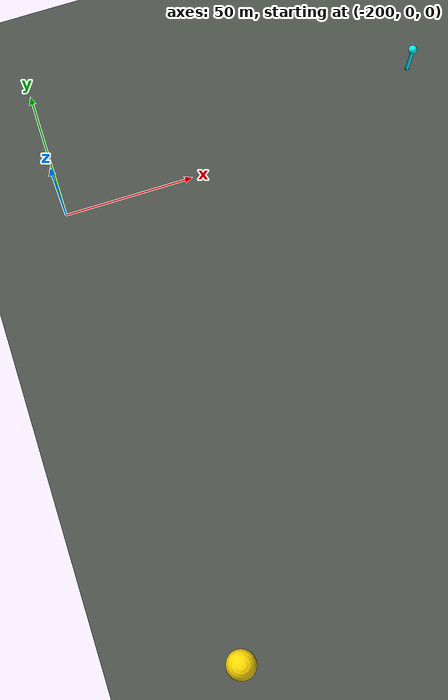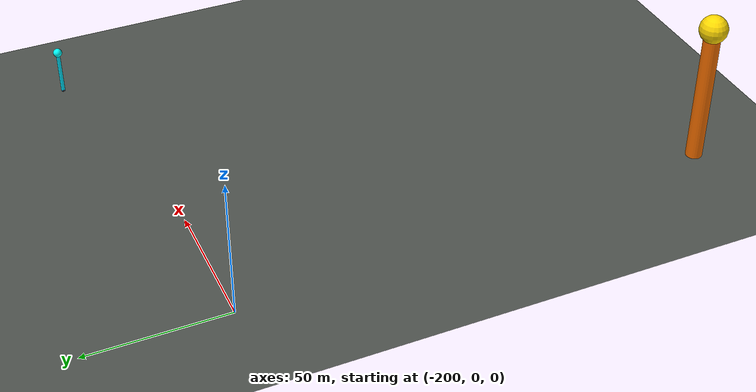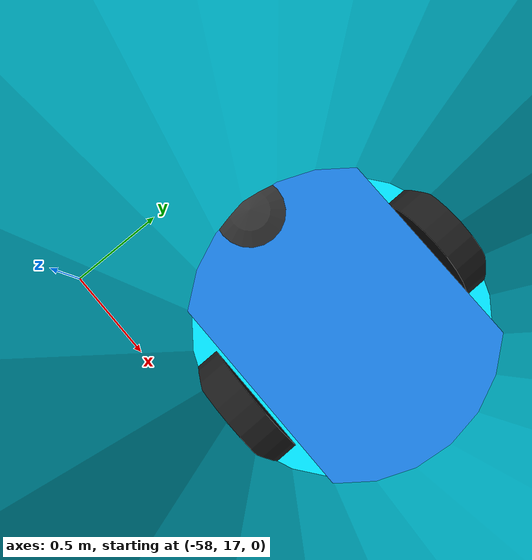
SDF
<?xml version="1.0"?>
<sdf version="1.10">
  <world name="rfsim">
    <physics name="1ms" type="ignored"><max_step_size>0.004</max_step_size><real_time_factor>1.0</real_time_factor></physics>
    <plugin filename="gz-sim-physics-system" name="gz::sim::systems::Physics"/>
    <plugin filename="gz-sim-user-commands-system" name="gz::sim::systems::UserCommands"/>
    <plugin filename="gz-sim-scene-broadcaster-system" name="gz::sim::systems::SceneBroadcaster"/>
    <scene><ambient>0.6 0.6 0.6 1</ambient><background>0.7 0.8 0.9 1</background></scene>
    <light type="directional" name="sun">
      <cast_shadows>false</cast_shadows><direction>-0.4 0.3 -0.9</direction>
      <diffuse>0.9 0.9 0.9 1</diffuse><specular>0.2 0.2 0.2 1</specular>
    </light>
    <model name="ground"><static>true</static><link name="l">
      <collision name="c"><geometry><plane><normal>0 0 1</normal><size>700 700</size></plane></geometry></collision>
      <visual name="v"><geometry><plane><normal>0 0 1</normal><size>700 700</size></plane></geometry>
        <material><ambient>0.25 0.27 0.25 1</ambient><diffuse>0.3 0.32 0.3 1</diffuse></material></visual>
    </link></model>
    <model name="emitter">
      <static>true</static>
      <pose>-187.85 -177.65 0 0 0 0</pose>
      <link name="l">
        <visual name="pillar"><pose>0 0 25 0 0 0</pose>
          <geometry><cylinder><radius>3</radius><length>50</length></cylinder></geometry>
          <material><ambient>1 0.35 0 1</ambient><diffuse>1 0.45 0 1</diffuse><emissive>1 0.4 0 1</emissive></material>
        </visual>
        <visual name="ball"><pose>0 0 52 0 0 0</pose>
          <geometry><sphere><radius>5</radius></sphere></geometry>
          <material><ambient>1 0.85 0 1</ambient><diffuse>1 0.85 0 1</diffuse><emissive>1 0.75 0 1</emissive></material>
        </visual>
      </link>
    </model>

    <model name="rover">
      <pose>-56.95 17.85 0 0 0 0</pose>
      <link name="chassis">
        <pose>0 0 0.40 0 0 0</pose>
        <inertial><mass>10.0</mass>
          <inertia><ixx>0.9</ixx><iyy>2.2</iyy><izz>3.0</izz><ixy>0</ixy><ixz>0</ixz><iyz>0</iyz></inertia>
        </inertial>
        <collision name="c"><geometry><box><size>1.6 1.0 0.3</size></box></geometry></collision>
        <visual name="v"><geometry><box><size>1.6 1.0 0.3</size></box></geometry>
          <material><ambient>0.1 0.4 0.8 1</ambient><diffuse>0.1 0.5 0.9 1</diffuse></material>
        </visual>
        <visual name="beacon"><pose>0 0 8 0 0 0</pose>
          <geometry><cylinder><radius>0.7</radius><length>16</length></cylinder></geometry>
          <material><ambient>0 0.8 1 1</ambient><diffuse>0 0.9 1 1</diffuse><emissive>0 0.7 1 1</emissive></material>
        </visual>
        <visual name="beacontop"><pose>0 0 16.5 0 0 0</pose>
          <geometry><sphere><radius>1.6</radius></sphere></geometry>
          <material><ambient>0 1 1 1</ambient><diffuse>0 1 1 1</diffuse><emissive>0 0.9 1 1</emissive></material>
        </visual>
      </link>
      <link name="lw">
        <pose>0 0.6 0.30 -1.5708 0 0</pose>
        <inertial><mass>1.0</mass><inertia><ixx>0.03</ixx><iyy>0.03</iyy><izz>0.045</izz><ixy>0</ixy><ixz>0</ixz><iyz>0</iyz></inertia></inertial>
        <collision name="c"><surface><friction><ode><mu>1.5</mu><mu2>1.5</mu2></ode></friction></surface>
          <geometry><cylinder><radius>0.30</radius><length>0.15</length></cylinder></geometry></collision>
        <visual name="v"><geometry><cylinder><radius>0.30</radius><length>0.15</length></cylinder></geometry>
          <material><ambient>0.1 0.1 0.1 1</ambient></material></visual>
      </link>
      <link name="rw">
        <pose>0 -0.6 0.30 -1.5708 0 0</pose>
        <inertial><mass>1.0</mass><inertia><ixx>0.03</ixx><iyy>0.03</iyy><izz>0.045</izz><ixy>0</ixy><ixz>0</ixz><iyz>0</iyz></inertia></inertial>
        <collision name="c"><surface><friction><ode><mu>1.5</mu><mu2>1.5</mu2></ode></friction></surface>
          <geometry><cylinder><radius>0.30</radius><length>0.15</length></cylinder></geometry></collision>
        <visual name="v"><geometry><cylinder><radius>0.30</radius><length>0.15</length></cylinder></geometry>
          <material><ambient>0.1 0.1 0.1 1</ambient></material></visual>
      </link>
      <link name="caster">
        <pose>-0.65 0 0.30 0 0 0</pose>
        <inertial><mass>0.3</mass><inertia><ixx>0.005</ixx><iyy>0.005</iyy><izz>0.005</izz><ixy>0</ixy><ixz>0</ixz><iyz>0</iyz></inertia></inertial>
        <collision name="c"><surface><friction><ode><mu>0.0</mu><mu2>0.0</mu2></ode></friction></surface>
          <geometry><sphere><radius>0.30</radius></sphere></geometry></collision>
        <visual name="v"><geometry><sphere><radius>0.30</radius></sphere></geometry>
          <material><ambient>0.2 0.2 0.2 1</ambient></material></visual>
      </link>
      <joint name="lwj" type="revolute"><parent>chassis</parent><child>lw</child>
        <axis><xyz>0 1 0</xyz><limit><lower>-1e16</lower><upper>1e16</upper></limit></axis></joint>
      <joint name="rwj" type="revolute"><parent>chassis</parent><child>rw</child>
        <axis><xyz>0 1 0</xyz><limit><lower>-1e16</lower><upper>1e16</upper></limit></axis></joint>
      <joint name="cj" type="ball"><parent>chassis</parent><child>caster</child></joint>

      <plugin filename="gz-sim-diff-drive-system" name="gz::sim::systems::DiffDrive">
        <left_joint>lwj</left_joint>
        <right_joint>rwj</right_joint>
        <wheel_separation>1.2</wheel_separation>
        <wheel_radius>0.30</wheel_radius>
        <topic>/model/rover/cmd_vel</topic>
        <odom_topic>/model/rover/odometry</odom_topic>
        <tf_topic>/model/rover/tf</tf_topic>
        <frame_id>odom</frame_id>
        <child_frame_id>rover</child_frame_id>
        <odom_publish_frequency>30</odom_publish_frequency>
        <max_linear_acceleration>3.0</max_linear_acceleration>
      </plugin>
    </model>
    <gui fullscreen="0">
      <plugin filename="MinimalScene" name="3D View">
        <gz-gui>
          <title>RF Seeker — live</title>
          <property type="bool" key="showTitleBar">false</property>
          <property type="string" key="state">docked</property>
        </gz-gui>
        <engine>ogre2</engine>
        <scene>scene</scene>
        <ambient_light>0.6 0.6 0.6</ambient_light>
        <background_color>0.7 0.8 0.9</background_color>
        <camera_pose>0 -210 320 0 0.95 1.5708</camera_pose>
      </plugin>
      <plugin filename="GzSceneManager" name="Scene Manager"/>
      <plugin filename="InteractiveViewControl" name="Interactive view control"/>
      <plugin filename="CameraTracking" name="Camera Tracking"/>
      <plugin filename="MarkerManager" name="Marker manager"/>
      <plugin filename="SelectEntities" name="Select entities"/>
      <plugin filename="VisualizationCapabilities" name="Visualization capabilities"/>
      <plugin filename="WorldControl" name="World control">
        <gz-gui>
          <title>World control</title>
          <property type="bool" key="showTitleBar">false</property>
          <property type="bool" key="resizable">false</property>
          <property type="double" key="height">72</property>
          <property type="double" key="width">121</property>
          <property type="double" key="z">1</property>
          <property type="string" key="state">floating</property>
          <anchors target="3D View"><line own="left" target="left"/><line own="bottom" target="bottom"/></anchors>
        </gz-gui>
        <play_pause>true</play_pause>
        <step>true</step>
        <start_paused>false</start_paused>
      </plugin>
      <plugin filename="WorldStats" name="World stats">
        <gz-gui>
          <title>World stats</title>
          <property type="bool" key="showTitleBar">false</property>
          <property type="bool" key="resizable">false</property>
          <property type="double" key="height">110</property>
          <property type="double" key="width">290</property>
          <property type="string" key="state">floating</property>
          <anchors target="3D View"><line own="right" target="right"/><line own="bottom" target="bottom"/></anchors>
        </gz-gui>
        <sim_time>true</sim_time><real_time>true</real_time><real_time_factor>true</real_time_factor>
      </plugin>
    </gui>
  </world>
</sdf>
